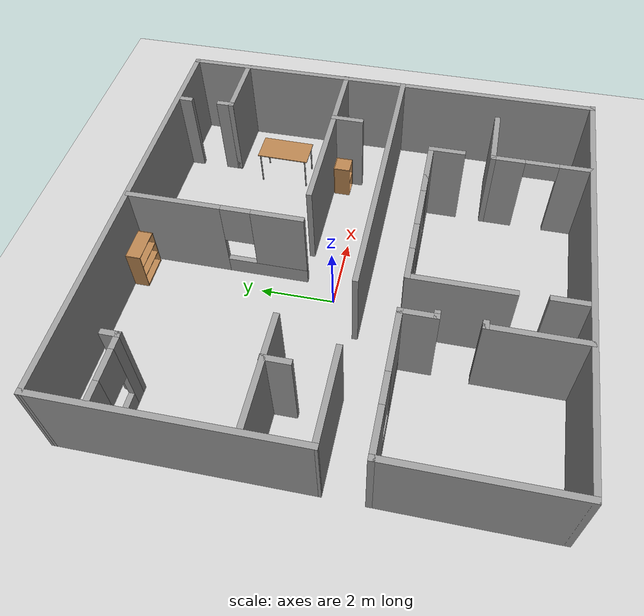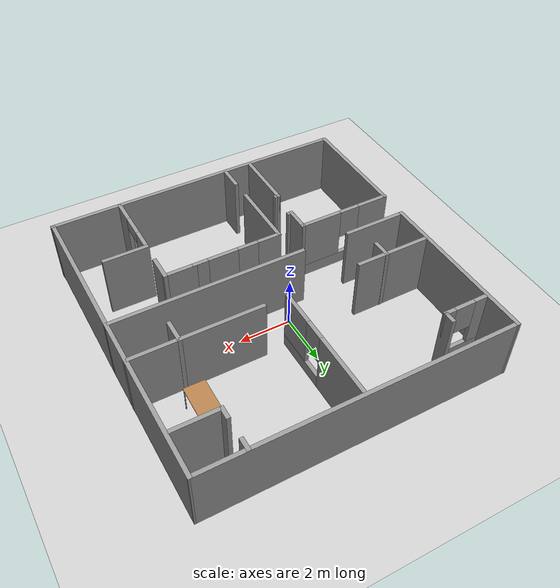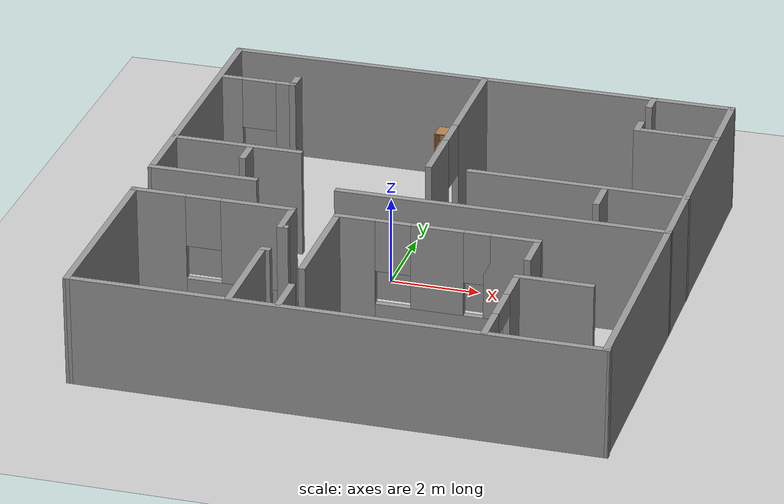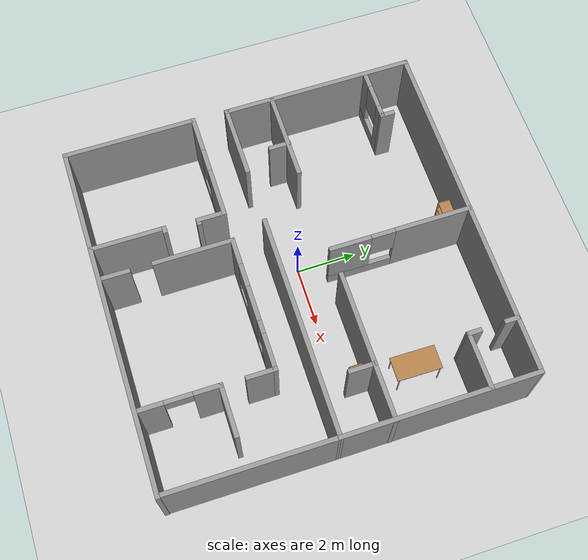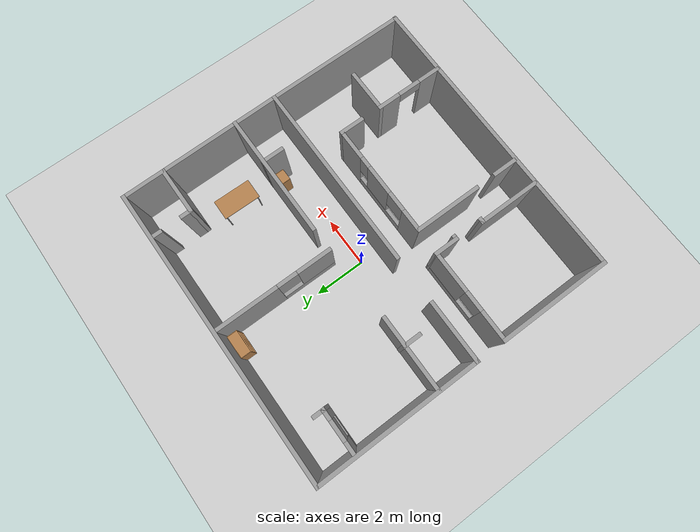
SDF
<sdf version="1.6">
 <world name="default">
  <model name="ground_plane">
   <static>1</static>
   <link name="link">
    <collision name="collision">
     <geometry><plane><normal>0 0 1</normal><size>100 100</size></plane></geometry>
     <surface><friction><ode><mu>100</mu><mu2>50</mu2></ode></friction></surface>
    </collision>
    <visual name="visual">
     <cast_shadows>0</cast_shadows>
     <geometry><plane><normal>0 0 1</normal><size>100 100</size></plane></geometry>
     <material>
      <script><uri>file://media/materials/scripts/gazebo.material</uri><name>Gazebo/Grey</name></script>
     </material>
    </visual>
   </link>
  </model>
  <model name="office01">
   <pose>0.568925 2.3845 0 0 -0 0</pose>
   <link name="Wall_0">
    <collision name="Wall_0_Collision">
     <geometry><box><size>6.50002 0.15 2.5</size></box></geometry>
     <pose>0 0 1.25 0 -0 0</pose>
    </collision>
    <visual name="Wall_0_Visual">
     <pose>0 0 1.25 0 -0 0</pose>
     <geometry><box><size>6.50002 0.15 2.5</size></box></geometry>
     <material>
      <script><uri>file://media/materials/scripts/gazebo.material</uri><name>Gazebo/Grey</name></script>
      <ambient>1 1 1 1</ambient>
     </material>
     <meta><layer>0</layer></meta>
    </visual>
    <pose>-5.80875 0 0 0 -0 -1.56809</pose>
   </link>
   <link name="Wall_10">
    <collision name="Wall_10_Collision">
     <geometry><box><size>3 0.15 2.5</size></box></geometry>
     <pose>0 0 1.25 0 -0 0</pose>
    </collision>
    <visual name="Wall_10_Visual">
     <pose>0 0 1.25 0 -0 0</pose>
     <geometry><box><size>3 0.15 2.5</size></box></geometry>
     <material>
      <script><uri>file://media/materials/scripts/gazebo.material</uri><name>Gazebo/Grey</name></script>
      <ambient>1 1 1 1</ambient>
     </material>
     <meta><layer>0</layer></meta>
    </visual>
    <pose>-4.33368 -1.60273 0 0 -0 0</pose>
   </link>
   <link name="Wall_2">
    <collision name="Wall_2_Collision">
     <geometry><box><size>6.5 0.15 2.5</size></box></geometry>
     <pose>0 0 1.25 0 -0 0</pose>
    </collision>
    <visual name="Wall_2_Visual">
     <pose>0 0 1.25 0 -0 0</pose>
     <geometry><box><size>6.5 0.15 2.5</size></box></geometry>
     <material>
      <script><uri>file://media/materials/scripts/gazebo.material</uri><name>Gazebo/Grey</name></script>
      <ambient>1 1 1 1</ambient>
     </material>
     <meta><layer>0</layer></meta>
    </visual>
    <pose>5.79985 0 0 0 -0 1.57621</pose>
   </link>
   <link name="Wall_20">
    <collision name="Wall_20_Collision">
     <geometry><box><size>1.942 0.15 2.5</size></box></geometry>
     <pose>0 0 1.25 0 -0 0</pose>
    </collision>
    <visual name="Wall_20_Visual">
     <pose>0 0 1.25 0 -0 0</pose>
     <geometry><box><size>1.942 0.15 2.5</size></box></geometry>
     <material>
      <script><uri>file://media/materials/scripts/gazebo.material</uri><name>Gazebo/Grey</name></script>
      <ambient>1 1 1 1</ambient>
     </material>
     <meta><layer>0</layer></meta>
    </visual>
    <pose>4.89205 1.56449 0 0 -0 0</pose>
   </link>
   <link name="Wall_29">
    <pose>-4.87284 1.70799 0 0 -0 3.14159</pose>
    <visual name="Wall_29_Visual_0">
     <pose>-0.643503 0 1.25 0 -0 0</pose>
     <geometry><box><size>0.462994 0.15 2.5</size></box></geometry>
     <material>
      <script><uri>file://media/materials/scripts/gazebo.material</uri><name>Gazebo/Grey</name></script>
      <ambient>1 1 1 1</ambient>
     </material>
     <meta><layer>0</layer></meta>
    </visual>
    <collision name="Wall_29_Collision_0">
     <geometry><box><size>0.462994 0.15 2.5</size></box></geometry>
     <pose>-0.643503 0 1.25 0 -0 0</pose>
    </collision>
    <visual name="Wall_29_Visual_1">
     <pose>0.231497 0 0.25 0 -0 0</pose>
     <geometry><box><size>1.28701 0.15 0.5</size></box></geometry>
     <material>
      <script><uri>file://media/materials/scripts/gazebo.material</uri><name>Gazebo/Grey</name></script>
      <ambient>1 1 1 1</ambient>
     </material>
     <meta><layer>0</layer></meta>
    </visual>
    <collision name="Wall_29_Collision_1">
     <geometry><box><size>1.28701 0.15 0.5</size></box></geometry>
     <pose>0.231497 0 0.25 0 -0 0</pose>
    </collision>
    <visual name="Wall_29_Visual_2">
     <pose>0.631497 0 1.5 0 -0 0</pose>
     <geometry><box><size>0.487006 0.15 2</size></box></geometry>
     <material>
      <script><uri>file://media/materials/scripts/gazebo.material</uri><name>Gazebo/Grey</name></script>
      <ambient>1 1 1 1</ambient>
     </material>
     <meta><layer>0</layer></meta>
    </visual>
    <collision name="Wall_29_Collision_2">
     <geometry><box><size>0.487006 0.15 2</size></box></geometry>
     <pose>0.631497 0 1.5 0 -0 0</pose>
    </collision>
    <visual name="Wall_29_Visual_3">
     <pose>-0.012006 0 1.9 0 -0 0</pose>
     <geometry><box><size>0.8 0.15 1.2</size></box></geometry>
     <material>
      <script><uri>file://media/materials/scripts/gazebo.material</uri><name>Gazebo/Grey</name></script>
      <ambient>1 1 1 1</ambient>
     </material>
     <meta><layer>0</layer></meta>
    </visual>
    <collision name="Wall_29_Collision_3">
     <geometry><box><size>0.8 0.15 1.2</size></box></geometry>
     <pose>-0.012006 0 1.9 0 -0 0</pose>
    </collision>
   </link>
   <link name="Wall_31">
    <collision name="Wall_31_Collision">
     <geometry><box><size>0.5 0.15 2.5</size></box></geometry>
     <pose>0 0 1.25 0 -0 0</pose>
    </collision>
    <visual name="Wall_31_Visual">
     <pose>0 0 1.25 0 -0 0</pose>
     <geometry><box><size>0.5 0.15 2.5</size></box></geometry>
     <material>
      <script><uri>file://media/materials/scripts/gazebo.material</uri><name>Gazebo/Grey</name></script>
      <ambient>1 1 1 1</ambient>
     </material>
     <meta><layer>0</layer></meta>
    </visual>
    <pose>-4.07284 1.88298 0 0 -0 1.5708</pose>
   </link>
   <link name="Wall_33">
    <collision name="Wall_33_Collision">
     <geometry><box><size>0.75 0.15 2.5</size></box></geometry>
     <pose>0 0 1.25 0 -0 0</pose>
    </collision>
    <visual name="Wall_33_Visual">
     <pose>0 0 1.25 0 -0 0</pose>
     <geometry><box><size>0.75 0.15 2.5</size></box></geometry>
     <material>
      <script><uri>file://media/materials/scripts/gazebo.material</uri><name>Gazebo/Grey</name></script>
      <ambient>1 1 1 1</ambient>
     </material>
     <meta><layer>0</layer></meta>
    </visual>
    <pose>-4.01825 -1.89025 0 0 -0 -1.5708</pose>
   </link>
   <link name="Wall_36">
    <collision name="Wall_36_Collision">
     <geometry><box><size>2.5 0.15 2.5</size></box></geometry>
     <pose>0 0 1.25 0 -0 0</pose>
    </collision>
    <visual name="Wall_36_Visual">
     <pose>0 0 1.25 0 -0 0</pose>
     <geometry><box><size>2.5 0.15 2.5</size></box></geometry>
     <material>
      <script><uri>file://media/materials/scripts/gazebo.material</uri><name>Gazebo/Grey</name></script>
      <ambient>1 1 1 1</ambient>
     </material>
     <meta><layer>0</layer></meta>
    </visual>
    <pose>-4.62515 -3.175 0 0 -0 0</pose>
   </link>
   <link name="Wall_38">
    <collision name="Wall_38_Collision">
     <geometry><box><size>7.5 0.15 2.5</size></box></geometry>
     <pose>0 0 1.25 0 -0 0</pose>
    </collision>
    <visual name="Wall_38_Visual">
     <pose>0 0 1.25 0 -0 0</pose>
     <geometry><box><size>7.5 0.15 2.5</size></box></geometry>
     <material>
      <script><uri>file://media/materials/scripts/gazebo.material</uri><name>Gazebo/Grey</name></script>
      <ambient>1 1 1 1</ambient>
     </material>
     <meta><layer>0</layer></meta>
    </visual>
    <pose>2.14205 -3.175 0 0 -0 3.14159</pose>
   </link>
   <link name="Wall_4">
    <collision name="Wall_4_Collision">
     <geometry><box><size>11.75 0.15 2.5</size></box></geometry>
     <pose>0 0 1.25 0 -0 0</pose>
    </collision>
    <visual name="Wall_4_Visual">
     <pose>0 0 1.25 0 -0 0</pose>
     <geometry><box><size>11.75 0.15 2.5</size></box></geometry>
     <material>
      <script><uri>file://media/materials/scripts/gazebo.material</uri><name>Gazebo/Grey</name></script>
      <ambient>1 1 1 1</ambient>
     </material>
     <meta><layer>0</layer></meta>
    </visual>
    <pose>-0.017345 3.175 0 0 -0 0</pose>
   </link>
   <link name="Wall_40">
    <collision name="Wall_40_Collision">
     <geometry><box><size>0.927 0.15 2.5</size></box></geometry>
     <pose>0 0 1.25 0 -0 0</pose>
    </collision>
    <visual name="Wall_40_Visual">
     <pose>0 0 1.25 0 -0 0</pose>
     <geometry><box><size>0.927 0.15 2.5</size></box></geometry>
     <material>
      <script><uri>file://media/materials/scripts/gazebo.material</uri><name>Gazebo/Grey</name></script>
      <ambient>1 1 1 1</ambient>
     </material>
     <meta><layer>0</layer></meta>
    </visual>
    <pose>4.01205 -1.85401 0 0 -0 -1.5708</pose>
   </link>
   <link name="Wall_42">
    <collision name="Wall_42_Collision">
     <geometry><box><size>5 0.15 2.5</size></box></geometry>
     <pose>0 0 1.25 0 -0 0</pose>
    </collision>
    <visual name="Wall_42_Visual">
     <pose>0 0 1.25 0 -0 0</pose>
     <geometry><box><size>5 0.15 2.5</size></box></geometry>
     <material>
      <script><uri>file://media/materials/scripts/gazebo.material</uri><name>Gazebo/Grey</name></script>
      <ambient>1 1 1 1</ambient>
     </material>
     <meta><layer>0</layer></meta>
    </visual>
    <pose>3.39255 -1.46989 0 0 -0 3.14159</pose>
   </link>
   <link name="Wall_44">
    <pose>0.039873 0.821301 0 0 -0 -1.5708</pose>
    <visual name="Wall_44_Visual_0">
     <pose>-1.10168 0 1.25 0 -0 0</pose>
     <geometry><box><size>2.54664 0.15 2.5</size></box></geometry>
     <material>
      <script><uri>file://media/materials/scripts/gazebo.material</uri><name>Gazebo/Grey</name></script>
      <ambient>1 1 1 1</ambient>
     </material>
     <meta><layer>0</layer></meta>
    </visual>
    <collision name="Wall_44_Collision_0">
     <geometry><box><size>2.54664 0.15 2.5</size></box></geometry>
     <pose>-1.10168 0 1.25 0 -0 0</pose>
    </collision>
    <visual name="Wall_44_Visual_1">
     <pose>1.27332 0 0.25 0 -0 0</pose>
     <geometry><box><size>2.20336 0.15 0.5</size></box></geometry>
     <material>
      <script><uri>file://media/materials/scripts/gazebo.material</uri><name>Gazebo/Grey</name></script>
      <ambient>1 1 1 1</ambient>
     </material>
     <meta><layer>0</layer></meta>
    </visual>
    <collision name="Wall_44_Collision_1">
     <geometry><box><size>2.20336 0.15 0.5</size></box></geometry>
     <pose>1.27332 0 0.25 0 -0 0</pose>
    </collision>
    <visual name="Wall_44_Visual_2">
     <pose>1.67332 0 1.5 0 -0 0</pose>
     <geometry><box><size>1.40336 0.15 2</size></box></geometry>
     <material>
      <script><uri>file://media/materials/scripts/gazebo.material</uri><name>Gazebo/Grey</name></script>
      <ambient>1 1 1 1</ambient>
     </material>
     <meta><layer>0</layer></meta>
    </visual>
    <collision name="Wall_44_Collision_2">
     <geometry><box><size>1.40336 0.15 2</size></box></geometry>
     <pose>1.67332 0 1.5 0 -0 0</pose>
    </collision>
    <visual name="Wall_44_Visual_3">
     <pose>0.571641 0 1.9 0 -0 0</pose>
     <geometry><box><size>0.8 0.15 1.2</size></box></geometry>
     <material>
      <script><uri>file://media/materials/scripts/gazebo.material</uri><name>Gazebo/Grey</name></script>
      <ambient>1 1 1 1</ambient>
     </material>
     <meta><layer>0</layer></meta>
    </visual>
    <collision name="Wall_44_Collision_3">
     <geometry><box><size>0.8 0.15 1.2</size></box></geometry>
     <pose>0.571641 0 1.9 0 -0 0</pose>
    </collision>
   </link>
   <link name="Wall_46">
    <collision name="Wall_46_Collision">
     <geometry><box><size>0.5 0.15 2.5</size></box></geometry>
     <pose>0 0 1.25 0 -0 0</pose>
    </collision>
    <visual name="Wall_46_Visual">
     <pose>0 0 1.25 0 -0 0</pose>
     <geometry><box><size>0.5 0.15 2.5</size></box></geometry>
     <material>
      <script><uri>file://media/materials/scripts/gazebo.material</uri><name>Gazebo/Grey</name></script>
      <ambient>1 1 1 1</ambient>
     </material>
     <meta><layer>0</layer></meta>
    </visual>
    <pose>3.97763 2.98069 0 0 -0 -1.5708</pose>
   </link>
   <link name="Wall_48">
    <collision name="Wall_48_Collision">
     <geometry><box><size>0.5 0.15 2.5</size></box></geometry>
     <pose>0 0 1.25 0 -0 0</pose>
    </collision>
    <visual name="Wall_48_Visual">
     <pose>0 0 1.25 0 -0 0</pose>
     <geometry><box><size>0.5 0.15 2.5</size></box></geometry>
     <material>
      <script><uri>file://media/materials/scripts/gazebo.material</uri><name>Gazebo/Grey</name></script>
      <ambient>1 1 1 1</ambient>
     </material>
     <meta><layer>0</layer></meta>
    </visual>
    <pose>3.99605 1.73949 0 0 -0 1.5708</pose>
   </link>
   <link name="Wall_7">
    <collision name="Wall_7_Collision">
     <geometry><box><size>0.15 0.15 2.5</size></box></geometry>
     <pose>0 0 1.25 0 -0 0</pose>
    </collision>
    <visual name="Wall_7_Visual">
     <pose>0 0 1.25 0 -0 0</pose>
     <geometry><box><size>0.15 0.15 2.5</size></box></geometry>
     <material>
      <script><uri>file://media/materials/scripts/gazebo.material</uri><name>Gazebo/Grey</name></script>
      <ambient>1 1 1 1</ambient>
     </material>
     <meta><layer>0</layer></meta>
    </visual>
    <pose>-4.07284 1.70799 0 0 -0 0</pose>
   </link>
   <static>1</static>
  </model>
  <model name="table_clone_1">
   <static>1</static>
   <link name="link">
    <collision name="surface">
     <pose>0 0 1 0 -0 0</pose>
     <geometry><box><size>1.5 0.8 0.03</size></box></geometry>
     <surface><friction><ode><mu>0.6</mu><mu2>0.6</mu2></ode></friction></surface>
    </collision>
    <visual name="visual1">
     <pose>0 0 1 0 -0 0</pose>
     <geometry><box><size>1.5 0.8 0.03</size></box></geometry>
     <material>
      <script><uri>file://media/materials/scripts/gazebo.material</uri><name>Gazebo/Wood</name></script>
     </material>
    </visual>
    <collision name="front_left_leg">
     <pose>0.68 0.38 0.5 0 -0 0</pose>
     <geometry><cylinder><radius>0.02</radius><length>1</length></cylinder></geometry>
    </collision>
    <visual name="front_left_leg">
     <pose>0.68 0.38 0.5 0 -0 0</pose>
     <geometry><cylinder><radius>0.02</radius><length>1</length></cylinder></geometry>
     <material>
      <script><uri>file://media/materials/scripts/gazebo.material</uri><name>Gazebo/Grey</name></script>
     </material>
    </visual>
    <collision name="front_right_leg">
     <pose>0.68 -0.38 0.5 0 -0 0</pose>
     <geometry><cylinder><radius>0.02</radius><length>1</length></cylinder></geometry>
    </collision>
    <visual name="front_right_leg">
     <pose>0.68 -0.38 0.5 0 -0 0</pose>
     <geometry><cylinder><radius>0.02</radius><length>1</length></cylinder></geometry>
     <material>
      <script><uri>file://media/materials/scripts/gazebo.material</uri><name>Gazebo/Grey</name></script>
     </material>
    </visual>
    <collision name="back_right_leg">
     <pose>-0.68 -0.38 0.5 0 -0 0</pose>
     <geometry><cylinder><radius>0.02</radius><length>1</length></cylinder></geometry>
    </collision>
    <visual name="back_right_leg">
     <pose>-0.68 -0.38 0.5 0 -0 0</pose>
     <geometry><cylinder><radius>0.02</radius><length>1</length></cylinder></geometry>
     <material>
      <script><uri>file://media/materials/scripts/gazebo.material</uri><name>Gazebo/Grey</name></script>
     </material>
    </visual>
    <collision name="back_left_leg">
     <pose>-0.68 0.38 0.5 0 -0 0</pose>
     <geometry><cylinder><radius>0.02</radius><length>1</length></cylinder></geometry>
    </collision>
    <visual name="back_left_leg">
     <pose>-0.68 0.38 0.5 0 -0 0</pose>
     <geometry><cylinder><radius>0.02</radius><length>1</length></cylinder></geometry>
     <material>
      <script><uri>file://media/materials/scripts/gazebo.material</uri><name>Gazebo/Grey</name></script>
     </material>
    </visual>
   </link>
   <pose>4.539 2.42439 0 0 -0 1.5589</pose>
  </model>
  <model name="bookshelf">
   <static>1</static>
   <link name="link">
    <inertial><mass>1</mass></inertial>
    <collision name="back">
     <pose>0 0.005 0.6 0 -0 0</pose>
     <geometry><box><size>0.9 0.01 1.2</size></box></geometry>
    </collision>
    <visual name="visual1">
     <pose>0 0.005 0.6 0 -0 0</pose>
     <geometry><box><size>0.9 0.01 1.2</size></box></geometry>
     <material>
      <script><uri>file://media/materials/scripts/gazebo.material</uri><name>Gazebo/Wood</name></script>
     </material>
    </visual>
    <collision name="left_side">
     <pose>0.45 -0.195 0.6 0 -0 0</pose>
     <geometry><box><size>0.02 0.4 1.2</size></box></geometry>
    </collision>
    <visual name="visual2">
     <pose>0.45 -0.195 0.6 0 -0 0</pose>
     <geometry><box><size>0.02 0.4 1.2</size></box></geometry>
     <material>
      <script><uri>file://media/materials/scripts/gazebo.material</uri><name>Gazebo/Wood</name></script>
     </material>
    </visual>
    <collision name="right_side">
     <pose>-0.45 -0.195 0.6 0 -0 0</pose>
     <geometry><box><size>0.02 0.4 1.2</size></box></geometry>
    </collision>
    <visual name="visual3">
     <pose>-0.45 -0.195 0.6 0 -0 0</pose>
     <geometry><box><size>0.02 0.4 1.2</size></box></geometry>
     <material>
      <script><uri>file://media/materials/scripts/gazebo.material</uri><name>Gazebo/Wood</name></script>
     </material>
    </visual>
    <collision name="bottom">
     <pose>0 -0.195 0.03 0 -0 0</pose>
     <geometry><box><size>0.88 0.4 0.06</size></box></geometry>
    </collision>
    <visual name="visual4">
     <pose>0 -0.195 0.03 0 -0 0</pose>
     <geometry><box><size>0.88 0.4 0.06</size></box></geometry>
     <material>
      <script><uri>file://media/materials/scripts/gazebo.material</uri><name>Gazebo/Wood</name></script>
     </material>
    </visual>
    <collision name="top">
     <pose>0 -0.195 1.19 0 -0 0</pose>
     <geometry><box><size>0.88 0.4 0.02</size></box></geometry>
    </collision>
    <visual name="visual5">
     <pose>0 -0.195 1.19 0 -0 0</pose>
     <geometry><box><size>0.88 0.4 0.02</size></box></geometry>
     <material>
      <script><uri>file://media/materials/scripts/gazebo.material</uri><name>Gazebo/Wood</name></script>
     </material>
    </visual>
    <collision name="low_shelf">
     <pose>0 -0.195 0.43 0 -0 0</pose>
     <geometry><box><size>0.88 0.4 0.02</size></box></geometry>
    </collision>
    <visual name="visual6">
     <pose>0 -0.195 0.43 0 -0 0</pose>
     <geometry><box><size>0.88 0.4 0.02</size></box></geometry>
     <material>
      <script><uri>file://media/materials/scripts/gazebo.material</uri><name>Gazebo/Wood</name></script>
     </material>
    </visual>
    <collision name="high_shelf">
     <pose>0 -0.195 0.8 0 -0 0</pose>
     <geometry><box><size>0.88 0.4 0.02</size></box></geometry>
    </collision>
    <visual name="visual7">
     <pose>0 -0.195 0.8 0 -0 0</pose>
     <geometry><box><size>0.88 0.4 0.02</size></box></geometry>
     <material>
      <script><uri>file://media/materials/scripts/gazebo.material</uri><name>Gazebo/Wood</name></script>
     </material>
    </visual>
   </link>
   <pose>0.010642 5.47388 0 0 -0 0</pose>
  </model>
  <model name="cabinet">
   <static>1</static>
   <link name="cabinet_bottom_plate">
    <inertial>
     <pose>0 0 -1 0 -0 0</pose>
     <inertia><ixx>2.05</ixx><ixy>0</ixy><ixz>0</ixz><iyy>2.05</iyy><iyz>0</iyz><izz>2.05</izz></inertia>
     <mass>25</mass>
    </inertial>
    <collision name="cabinet_bottom_plate_geom">
     <pose>0 0 0.01 0 -0 0</pose>
     <geometry><box><size>0.45 0.45 0.02</size></box></geometry>
    </collision>
    <visual name="cabinet_bottom_plate_geom_visual">
     <pose>0 0 0.01 0 -0 0</pose>
     <geometry><box><size>0.45 0.45 0.02</size></box></geometry>
     <material>
      <script><uri>file://media/materials/scripts/gazebo.material</uri><name>Gazebo/Wood</name></script>
     </material>
    </visual>
    <collision name="cabinet_bottom_plate_geom_cabinet_back_plate">
     <pose>0.235 0 0.51 0 -0 0</pose>
     <geometry><box><size>0.02 0.45 1.02</size></box></geometry>
    </collision>
    <visual name="cabinet_bottom_plate_geom_cabinet_back_plate_visual">
     <pose>0.235 0 0.51 0 -0 0</pose>
     <geometry><box><size>0.02 0.45 1.02</size></box></geometry>
     <material>
      <script><uri>file://media/materials/scripts/gazebo.material</uri><name>Gazebo/Wood</name></script>
     </material>
    </visual>
    <collision name="cabinet_bottom_plate_geom_cabinet_left_plate">
     <pose>0 0.235 0.51 0 -0 0</pose>
     <geometry><box><size>0.45 0.02 1.02</size></box></geometry>
    </collision>
    <visual name="cabinet_bottom_plate_geom_cabinet_left_plate_visual">
     <pose>0 0.235 0.51 0 -0 0</pose>
     <geometry><box><size>0.45 0.02 1.02</size></box></geometry>
     <material>
      <script><uri>file://media/materials/scripts/gazebo.material</uri><name>Gazebo/Wood</name></script>
     </material>
    </visual>
    <collision name="cabinet_bottom_plate_geom_cabinet_middle_plate">
     <pose>0 0 0.51 0 -0 0</pose>
     <geometry><box><size>0.45 0.45 0.02</size></box></geometry>
    </collision>
    <visual name="cabinet_bottom_plate_geom_cabinet_middle_plate_visual">
     <pose>0 0 0.51 0 -0 0</pose>
     <geometry><box><size>0.45 0.45 0.02</size></box></geometry>
     <material>
      <script><uri>file://media/materials/scripts/gazebo.material</uri><name>Gazebo/Wood</name></script>
     </material>
    </visual>
    <collision name="cabinet_bottom_plate_geom_cabinet_right_plate">
     <pose>0 -0.235 0.51 0 -0 0</pose>
     <geometry><box><size>0.45 0.02 1.02</size></box></geometry>
    </collision>
    <visual name="cabinet_bottom_plate_geom_cabinet_right_plate_visual">
     <pose>0 -0.235 0.51 0 -0 0</pose>
     <geometry><box><size>0.45 0.02 1.02</size></box></geometry>
     <material>
      <script><uri>file://media/materials/scripts/gazebo.material</uri><name>Gazebo/Wood</name></script>
     </material>
    </visual>
    <collision name="cabinet_bottom_plate_geom_cabinet_top_plate">
     <pose>0 0 1.01 0 -0 0</pose>
     <geometry><box><size>0.45 0.45 0.02</size></box></geometry>
    </collision>
    <visual name="cabinet_bottom_plate_geom_cabinet_top_plate_visual">
     <pose>0 0 1.01 0 -0 0</pose>
     <geometry><box><size>0.45 0.45 0.02</size></box></geometry>
     <material>
      <script><uri>file://media/materials/scripts/gazebo.material</uri><name>Gazebo/Wood</name></script>
     </material>
    </visual>
   </link>
   <pose>4.25998 0.58904 0 0 -0 1.57541</pose>
  </model>
  <model name="officeadd">
   <pose>0.579453 -3.61762 0 0 -0 0</pose>
   <link name="Wall_14">
    <pose>-4.02731 1.67357 0 0 -0 0</pose>
    <visual name="Wall_14_Visual_0">
     <pose>-1.24347 0 1.25 0 -0 0</pose>
     <geometry><box><size>1.26306 0.15 2.5</size></box></geometry>
     <material>
      <script><uri>file://media/materials/scripts/gazebo.material</uri><name>Gazebo/Grey</name></script>
      <ambient>1 1 1 1</ambient>
     </material>
     <meta><layer>0</layer></meta>
    </visual>
    <collision name="Wall_14_Collision_0">
     <geometry><box><size>1.26306 0.15 2.5</size></box></geometry>
     <pose>-1.24347 0 1.25 0 -0 0</pose>
    </collision>
    <visual name="Wall_14_Visual_1">
     <pose>0.631531 0 0.25 0 -0 0</pose>
     <geometry><box><size>2.48694 0.15 0.5</size></box></geometry>
     <material>
      <script><uri>file://media/materials/scripts/gazebo.material</uri><name>Gazebo/Grey</name></script>
      <ambient>1 1 1 1</ambient>
     </material>
     <meta><layer>0</layer></meta>
    </visual>
    <collision name="Wall_14_Collision_1">
     <geometry><box><size>2.48694 0.15 0.5</size></box></geometry>
     <pose>0.631531 0 0.25 0 -0 0</pose>
    </collision>
    <visual name="Wall_14_Visual_2">
     <pose>1.03153 0 1.5 0 -0 0</pose>
     <geometry><box><size>1.68694 0.15 2</size></box></geometry>
     <material>
      <script><uri>file://media/materials/scripts/gazebo.material</uri><name>Gazebo/Grey</name></script>
      <ambient>1 1 1 1</ambient>
     </material>
     <meta><layer>0</layer></meta>
    </visual>
    <collision name="Wall_14_Collision_2">
     <geometry><box><size>1.68694 0.15 2</size></box></geometry>
     <pose>1.03153 0 1.5 0 -0 0</pose>
    </collision>
    <visual name="Wall_14_Visual_3">
     <pose>-0.211938 0 1.9 0 -0 0</pose>
     <geometry><box><size>0.8 0.15 1.2</size></box></geometry>
     <material>
      <script><uri>file://media/materials/scripts/gazebo.material</uri><name>Gazebo/Grey</name></script>
      <ambient>1 1 1 1</ambient>
     </material>
     <meta><layer>0</layer></meta>
    </visual>
    <collision name="Wall_14_Collision_3">
     <geometry><box><size>0.8 0.15 1.2</size></box></geometry>
     <pose>-0.211938 0 1.9 0 -0 0</pose>
    </collision>
   </link>
   <link name="Wall_15">
    <collision name="Wall_15_Collision">
     <geometry><box><size>1 0.15 2.5</size></box></geometry>
     <pose>0 0 1.25 0 -0 0</pose>
    </collision>
    <visual name="Wall_15_Visual">
     <pose>0 0 1.25 0 -0 0</pose>
     <geometry><box><size>1 0.15 2.5</size></box></geometry>
     <material>
      <script><uri>file://media/materials/scripts/gazebo.material</uri><name>Gazebo/Grey</name></script>
      <ambient>1 1 1 1</ambient>
     </material>
     <meta><layer>0</layer></meta>
    </visual>
    <pose>-2.22731 1.24857 0 0 -0 -1.5708</pose>
   </link>
   <link name="Wall_16">
    <collision name="Wall_16_Collision">
     <geometry><box><size>0.25 0.15 2.5</size></box></geometry>
     <pose>0 0 1.25 0 -0 0</pose>
    </collision>
    <visual name="Wall_16_Visual">
     <pose>0 0 1.25 0 -0 0</pose>
     <geometry><box><size>0.25 0.15 2.5</size></box></geometry>
     <material>
      <script><uri>file://media/materials/scripts/gazebo.material</uri><name>Gazebo/Grey</name></script>
      <ambient>1 1 1 1</ambient>
     </material>
     <meta><layer>0</layer></meta>
    </visual>
    <pose>-2.17731 0.823566 0 0 -0 0</pose>
   </link>
   <link name="Wall_18">
    <collision name="Wall_18_Collision">
     <geometry><box><size>0.25 0.15 2.5</size></box></geometry>
     <pose>0 0 1.25 0 -0 0</pose>
    </collision>
    <visual name="Wall_18_Visual">
     <pose>0 0 1.25 0 -0 0</pose>
     <geometry><box><size>0.25 0.15 2.5</size></box></geometry>
     <material>
      <script><uri>file://media/materials/scripts/gazebo.material</uri><name>Gazebo/Grey</name></script>
      <ambient>1 1 1 1</ambient>
     </material>
     <meta><layer>0</layer></meta>
    </visual>
    <pose>-2.23314 -0.282491 0 0 -0 0</pose>
   </link>
   <link name="Wall_20">
    <collision name="Wall_20_Collision">
     <geometry><box><size>2.68388 0.15 2.5</size></box></geometry>
     <pose>0 0 1.25 0 -0 0</pose>
    </collision>
    <visual name="Wall_20_Visual">
     <pose>0 0 1.25 0 -0 0</pose>
     <geometry><box><size>2.68388 0.15 2.5</size></box></geometry>
     <material>
      <script><uri>file://media/materials/scripts/gazebo.material</uri><name>Gazebo/Grey</name></script>
      <ambient>1 1 1 1</ambient>
     </material>
     <meta><layer>0</layer></meta>
    </visual>
    <pose>-1.21507 0.374342 0 0 -0 -1.5708</pose>
   </link>
   <link name="Wall_22">
    <collision name="Wall_22_Collision">
     <geometry><box><size>1 0.15 2.5</size></box></geometry>
     <pose>0 0 1.25 0 -0 0</pose>
    </collision>
    <visual name="Wall_22_Visual">
     <pose>0 0 1.25 0 -0 0</pose>
     <geometry><box><size>1 0.15 2.5</size></box></geometry>
     <material>
      <script><uri>file://media/materials/scripts/gazebo.material</uri><name>Gazebo/Grey</name></script>
      <ambient>1 1 1 1</ambient>
     </material>
     <meta><layer>0</layer></meta>
    </visual>
    <pose>-1.20548 -2.16447 0 0 -0 -1.5708</pose>
   </link>
   <link name="Wall_24">
    <pose>0.459933 1.6545 0 0 -0 0</pose>
    <visual name="Wall_24_Visual_0">
     <pose>-1.28249 0 1.25 0 -0 0</pose>
     <geometry><box><size>0.935013 0.15 2.5</size></box></geometry>
     <material>
      <script><uri>file://media/materials/scripts/gazebo.material</uri><name>Gazebo/Grey</name></script>
      <ambient>1 1 1 1</ambient>
     </material>
     <meta><layer>0</layer></meta>
    </visual>
    <collision name="Wall_24_Collision_0">
     <geometry><box><size>0.935013 0.15 2.5</size></box></geometry>
     <pose>-1.28249 0 1.25 0 -0 0</pose>
    </collision>
    <visual name="Wall_24_Visual_1">
     <pose>0.467506 0 0.25 0 -0 0</pose>
     <geometry><box><size>2.56499 0.15 0.5</size></box></geometry>
     <material>
      <script><uri>file://media/materials/scripts/gazebo.material</uri><name>Gazebo/Grey</name></script>
      <ambient>1 1 1 1</ambient>
     </material>
     <meta><layer>0</layer></meta>
    </visual>
    <collision name="Wall_24_Collision_1">
     <geometry><box><size>2.56499 0.15 0.5</size></box></geometry>
     <pose>0.467506 0 0.25 0 -0 0</pose>
    </collision>
    <visual name="Wall_24_Visual_2">
     <pose>0.570578 0 1.5 0 -0 0</pose>
     <geometry><box><size>1.17113 0.15 2</size></box></geometry>
     <material>
      <script><uri>file://media/materials/scripts/gazebo.material</uri><name>Gazebo/Grey</name></script>
      <ambient>1 1 1 1</ambient>
     </material>
     <meta><layer>0</layer></meta>
    </visual>
    <collision name="Wall_24_Collision_2">
     <geometry><box><size>1.17113 0.15 2</size></box></geometry>
     <pose>0.570578 0 1.5 0 -0 0</pose>
    </collision>
    <visual name="Wall_24_Visual_3">
     <pose>0.570578 0 1.5 0 -0 0</pose>
     <geometry><box><size>1.17113 0.15 2</size></box></geometry>
     <material>
      <script><uri>file://media/materials/scripts/gazebo.material</uri><name>Gazebo/Grey</name></script>
      <ambient>1 1 1 1</ambient>
     </material>
     <meta><layer>0</layer></meta>
    </visual>
    <collision name="Wall_24_Collision_3">
     <geometry><box><size>1.17113 0.15 2</size></box></geometry>
     <pose>0.570578 0 1.5 0 -0 0</pose>
    </collision>
    <visual name="Wall_24_Visual_4">
     <pose>-0.414987 0 1.9 0 -0 0</pose>
     <geometry><box><size>0.8 0.15 1.2</size></box></geometry>
     <material>
      <script><uri>file://media/materials/scripts/gazebo.material</uri><name>Gazebo/Grey</name></script>
      <ambient>1 1 1 1</ambient>
     </material>
     <meta><layer>0</layer></meta>
    </visual>
    <collision name="Wall_24_Collision_4">
     <geometry><box><size>0.8 0.15 1.2</size></box></geometry>
     <pose>-0.414987 0 1.9 0 -0 0</pose>
    </collision>
    <visual name="Wall_24_Visual_5">
     <pose>1.45307 0 1.9 0 -0 0</pose>
     <geometry><box><size>0.593857 0.15 1.2</size></box></geometry>
     <material>
      <script><uri>file://media/materials/scripts/gazebo.material</uri><name>Gazebo/Grey</name></script>
      <ambient>1 1 1 1</ambient>
     </material>
     <meta><layer>0</layer></meta>
    </visual>
    <collision name="Wall_24_Collision_5">
     <geometry><box><size>0.593857 0.15 1.2</size></box></geometry>
     <pose>1.45307 0 1.9 0 -0 0</pose>
    </collision>
    <visual name="Wall_24_Visual_6">
     <pose>1.45307 0 1.9 0 -0 0</pose>
     <geometry><box><size>0.593857 0.15 1.2</size></box></geometry>
     <material>
      <script><uri>file://media/materials/scripts/gazebo.material</uri><name>Gazebo/Grey</name></script>
      <ambient>1 1 1 1</ambient>
     </material>
     <meta><layer>0</layer></meta>
    </visual>
    <collision name="Wall_24_Collision_6">
     <geometry><box><size>0.593857 0.15 1.2</size></box></geometry>
     <pose>1.45307 0 1.9 0 -0 0</pose>
    </collision>
   </link>
   <link name="Wall_28">
    <collision name="Wall_28_Collision">
     <geometry><box><size>1.01323 0.15 2.5</size></box></geometry>
     <pose>0 0 1.25 0 -0 0</pose>
    </collision>
    <visual name="Wall_28_Visual">
     <pose>0 0 1.25 0 -0 0</pose>
     <geometry><box><size>1.01323 0.15 2.5</size></box></geometry>
     <material>
      <script><uri>file://media/materials/scripts/gazebo.material</uri><name>Gazebo/Grey</name></script>
      <ambient>1 1 1 1</ambient>
     </material>
     <meta><layer>0</layer></meta>
    </visual>
    <pose>3.24816 1.22289 0 0 -0 -1.5708</pose>
   </link>
   <link name="Wall_3">
    <collision name="Wall_3_Collision">
     <geometry><box><size>4.5 0.15 2.5</size></box></geometry>
     <pose>0 0 1.25 0 -0 0</pose>
    </collision>
    <visual name="Wall_3_Visual">
     <pose>0 0 1.25 0 -0 0</pose>
     <geometry><box><size>4.5 0.15 2.5</size></box></geometry>
     <material>
      <script><uri>file://media/materials/scripts/gazebo.material</uri><name>Gazebo/Grey</name></script>
      <ambient>1 1 1 1</ambient>
     </material>
     <meta><layer>0</layer></meta>
    </visual>
    <pose>-5.82731 -0.501434 0 0 -0 -1.5708</pose>
   </link>
   <link name="Wall_30">
    <pose>3.22581 -1.33288 0 0 -0 -1.5708</pose>
    <visual name="Wall_30_Visual_0">
     <pose>-0.907732 0 1.25 0 -0 0</pose>
     <geometry><box><size>0.934537 0.15 2.5</size></box></geometry>
     <material>
      <script><uri>file://media/materials/scripts/gazebo.material</uri><name>Gazebo/Grey</name></script>
      <ambient>1 1 1 1</ambient>
     </material>
     <meta><layer>0</layer></meta>
    </visual>
    <collision name="Wall_30_Collision_0">
     <geometry><box><size>0.934537 0.15 2.5</size></box></geometry>
     <pose>-0.907732 0 1.25 0 -0 0</pose>
    </collision>
    <visual name="Wall_30_Visual_1">
     <pose>0.917268 0 1.25 0 -0 0</pose>
     <geometry><box><size>0.915463 0.15 2.5</size></box></geometry>
     <material>
      <script><uri>file://media/materials/scripts/gazebo.material</uri><name>Gazebo/Grey</name></script>
      <ambient>1 1 1 1</ambient>
     </material>
     <meta><layer>0</layer></meta>
    </visual>
    <collision name="Wall_30_Collision_1">
     <geometry><box><size>0.915463 0.15 2.5</size></box></geometry>
     <pose>0.917268 0 1.25 0 -0 0</pose>
    </collision>
    <visual name="Wall_30_Visual_2">
     <pose>0.009537 0 2.25 0 -0 0</pose>
     <geometry><box><size>0.9 0.15 0.5</size></box></geometry>
     <material>
      <script><uri>file://media/materials/scripts/gazebo.material</uri><name>Gazebo/Grey</name></script>
      <ambient>1 1 1 1</ambient>
     </material>
     <meta><layer>0</layer></meta>
    </visual>
    <collision name="Wall_30_Collision_2">
     <geometry><box><size>0.9 0.15 0.5</size></box></geometry>
     <pose>0.009537 0 2.25 0 -0 0</pose>
    </collision>
   </link>
   <link name="Wall_32">
    <collision name="Wall_32_Collision">
     <geometry><box><size>1.75 0.15 2.5</size></box></geometry>
     <pose>0 0 1.25 0 -0 0</pose>
    </collision>
    <visual name="Wall_32_Visual">
     <pose>0 0 1.25 0 -0 0</pose>
     <geometry><box><size>1.75 0.15 2.5</size></box></geometry>
     <material>
      <script><uri>file://media/materials/scripts/gazebo.material</uri><name>Gazebo/Grey</name></script>
      <ambient>1 1 1 1</ambient>
     </material>
     <meta><layer>0</layer></meta>
    </visual>
    <pose>4.02581 -0.032875 0 0 -0 0</pose>
   </link>
   <link name="Wall_34">
    <collision name="Wall_34_Collision">
     <geometry><box><size>1.26323 0.15 2.5</size></box></geometry>
     <pose>0 0 1.25 0 -0 0</pose>
    </collision>
    <visual name="Wall_34_Visual">
     <pose>0 0 1.25 0 -0 0</pose>
     <geometry><box><size>1.26323 0.15 2.5</size></box></geometry>
     <material>
      <script><uri>file://media/materials/scripts/gazebo.material</uri><name>Gazebo/Grey</name></script>
      <ambient>1 1 1 1</ambient>
     </material>
     <meta><layer>0</layer></meta>
    </visual>
    <pose>2.69155 1.6545 0 0 -0 0</pose>
   </link>
   <link name="Wall_5">
    <collision name="Wall_5_Collision">
     <geometry><box><size>11.8046 0.15 2.5</size></box></geometry>
     <pose>0 0 1.25 0 -0 0</pose>
    </collision>
    <visual name="Wall_5_Visual">
     <pose>0 0 1.25 0 -0 0</pose>
     <geometry><box><size>11.8046 0.15 2.5</size></box></geometry>
     <material>
      <script><uri>file://media/materials/scripts/gazebo.material</uri><name>Gazebo/Grey</name></script>
      <ambient>1 1 1 1</ambient>
     </material>
     <meta><layer>0</layer></meta>
    </visual>
    <pose>0 -2.67499 0 0 -0 0.000248</pose>
   </link>
   <link name="Wall_6">
    <collision name="Wall_6_Collision">
     <geometry><box><size>5.5 0.15 2.5</size></box></geometry>
     <pose>0 0 1.25 0 -0 0</pose>
    </collision>
    <visual name="Wall_6_Visual">
     <pose>0 0 1.25 0 -0 0</pose>
     <geometry><box><size>5.5 0.15 2.5</size></box></geometry>
     <material>
      <script><uri>file://media/materials/scripts/gazebo.material</uri><name>Gazebo/Grey</name></script>
      <ambient>1 1 1 1</ambient>
     </material>
     <meta><layer>0</layer></meta>
    </visual>
    <pose>5.80719 0.001452 0 0 -0 1.5708</pose>
   </link>
   <link name="Wall_8">
    <collision name="Wall_8_Collision">
     <geometry><box><size>2.5 0.15 2.5</size></box></geometry>
     <pose>0 0 1.25 0 -0 0</pose>
    </collision>
    <visual name="Wall_8_Visual">
     <pose>0 0 1.25 0 -0 0</pose>
     <geometry><box><size>2.5 0.15 2.5</size></box></geometry>
     <material>
      <script><uri>file://media/materials/scripts/gazebo.material</uri><name>Gazebo/Grey</name></script>
      <ambient>1 1 1 1</ambient>
     </material>
     <meta><layer>0</layer></meta>
    </visual>
    <pose>-2.28314 -1.45749 0 0 -0 1.5708</pose>
   </link>
   <static>1</static>
  </model>
 </world>
</sdf>
